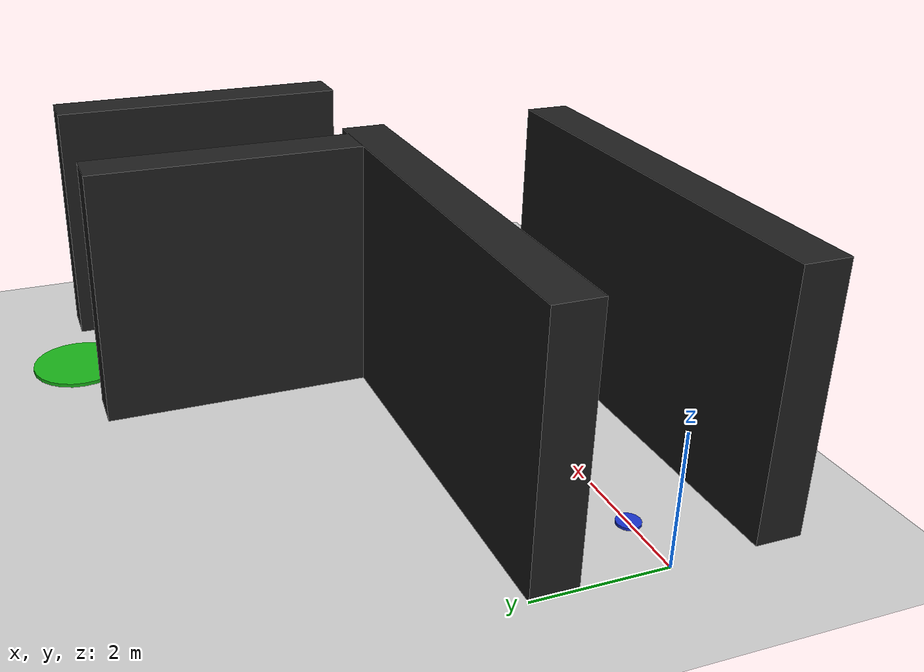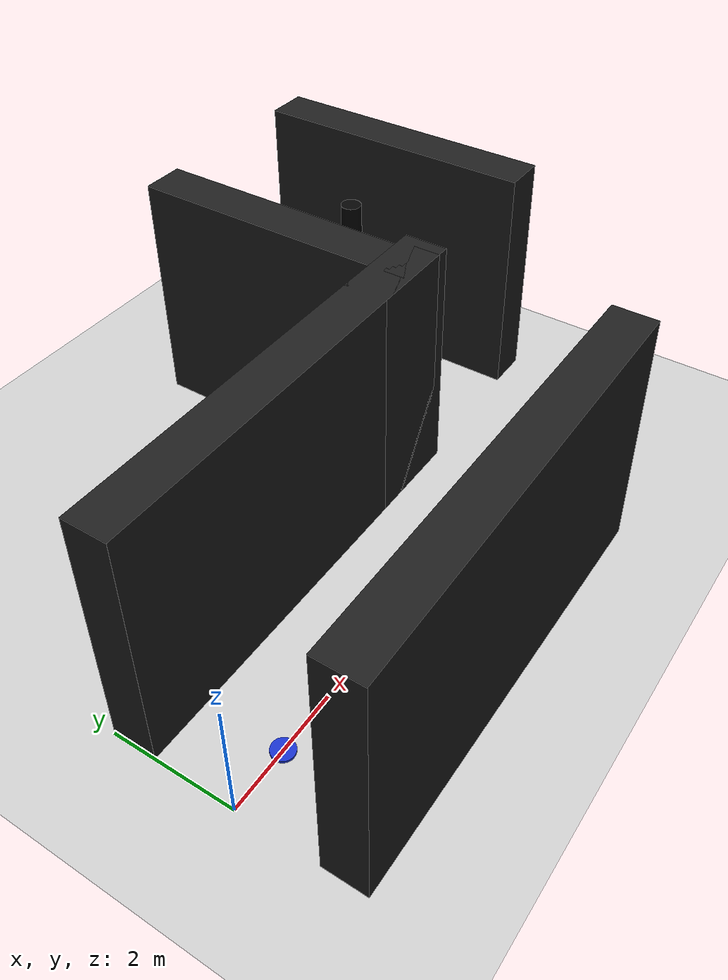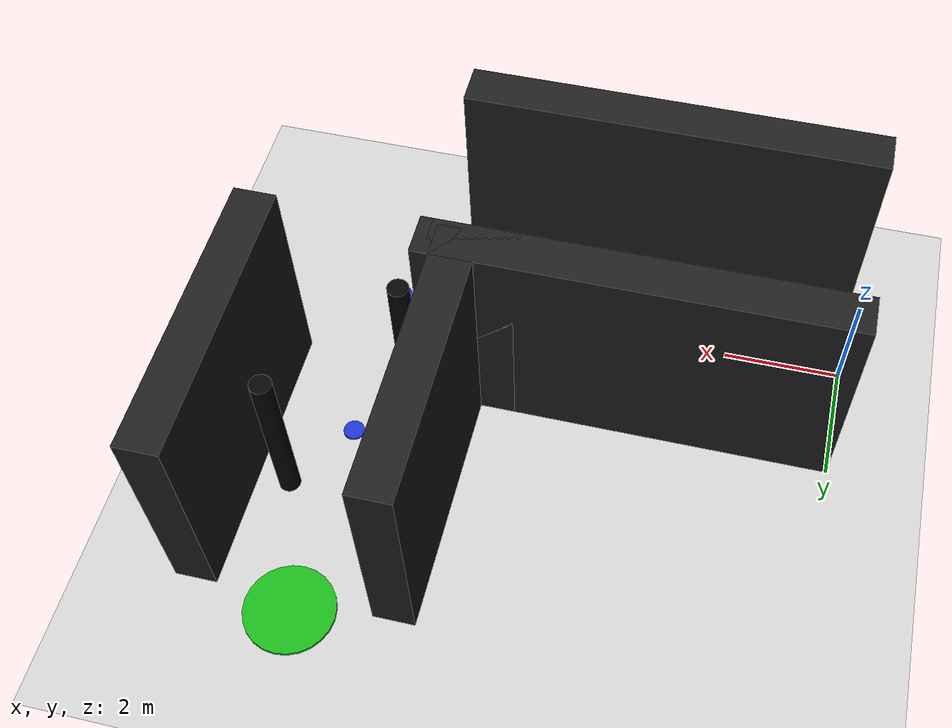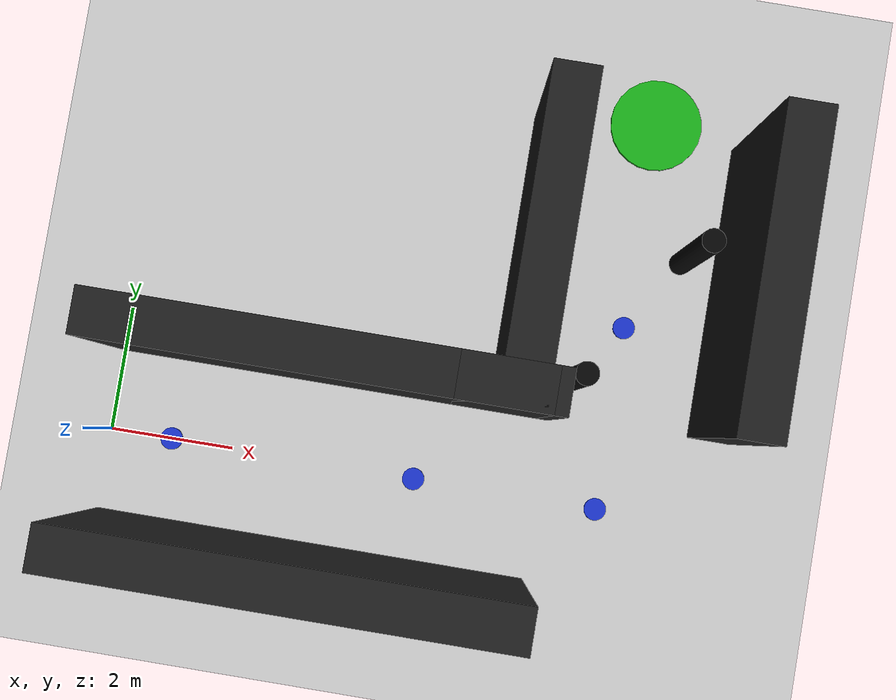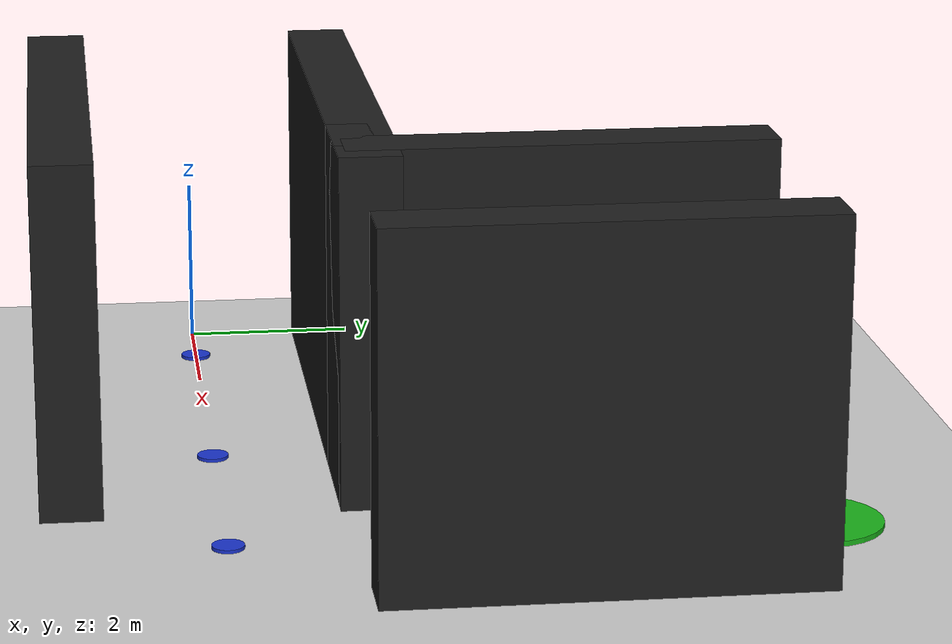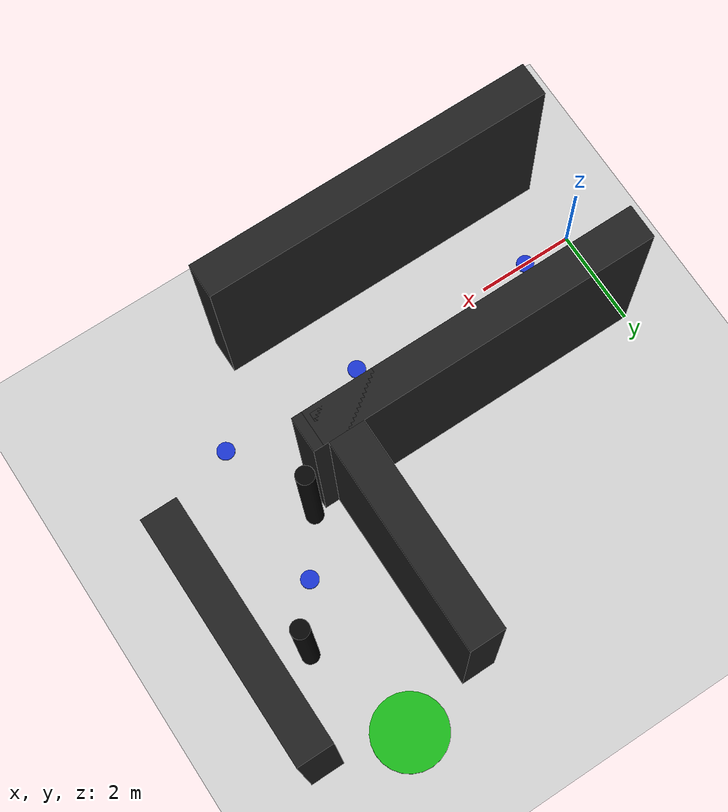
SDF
<?xml version='1.0' encoding='UTF-8'?>
<sdf version="1.6">
  <world name="d2_lshape_obstacle_delivery">

    <include>
      <uri>model://sun</uri>
    </include>

    <include>
      <uri>model://ground_plane</uri>
    </include>

    <physics name="default_physics" default="0" type="ode">
      <gravity>0 0 -9.8066</gravity>
      <ode>
        <solver>
          <type>quick</type>
          <iters>10</iters>
          <sor>1.3</sor>
        </solver>
        <constraints>
          <cfm>0</cfm>
          <erp>0.2</erp>
          <contact_max_correcting_vel>100</contact_max_correcting_vel>
          <contact_surface_layer>0.001</contact_surface_layer>
        </constraints>
      </ode>
      <real_time_update_rate>250</real_time_update_rate>
      <max_step_size>0.004</max_step_size>
    </physics>

    <model name="d2_wall_h_upper"><static>true</static><pose>3.5 1.65 2.0 0 0 0</pose><link name="link"><collision name="collision"><geometry><box><size>7.0 0.7 4.0</size></box></geometry></collision><visual name="visual"><geometry><box><size>7.0 0.7 4.0</size></box></geometry><material><ambient>0.12 0.12 0.12 1.0</ambient><diffuse>0.12 0.12 0.12 1.0</diffuse></material></visual></link></model><model name="d2_wall_h_lower"><static>true</static><pose>3.5 -1.65 2.0 0 0 0</pose><link name="link"><collision name="collision"><geometry><box><size>7.0 0.7 4.0</size></box></geometry></collision><visual name="visual"><geometry><box><size>7.0 0.7 4.0</size></box></geometry><material><ambient>0.12 0.12 0.12 1.0</ambient><diffuse>0.12 0.12 0.12 1.0</diffuse></material></visual></link></model><model name="d2_corner_block"><static>true</static><pose>6.1 1.65 2.0 0 0 0</pose><link name="link"><collision name="collision"><geometry><box><size>1.4 0.7 4.0</size></box></geometry></collision><visual name="visual"><geometry><box><size>1.4 0.7 4.0</size></box></geometry><material><ambient>0.12 0.12 0.12 1.0</ambient><diffuse>0.12 0.12 0.12 1.0</diffuse></material></visual></link></model><model name="d2_wall_v_left"><static>true</static><pose>6.35 3.8 2.0 0 0 0</pose><link name="link"><collision name="collision"><geometry><box><size>0.7 4.8 4.0</size></box></geometry></collision><visual name="visual"><geometry><box><size>0.7 4.8 4.0</size></box></geometry><material><ambient>0.12 0.12 0.12 1.0</ambient><diffuse>0.12 0.12 0.12 1.0</diffuse></material></visual></link></model><model name="d2_wall_v_right"><static>true</static><pose>9.65 3.8 2.0 0 0 0</pose><link name="link"><collision name="collision"><geometry><box><size>0.7 4.8 4.0</size></box></geometry></collision><visual name="visual"><geometry><box><size>0.7 4.8 4.0</size></box></geometry><material><ambient>0.12 0.12 0.12 1.0</ambient><diffuse>0.12 0.12 0.12 1.0</diffuse></material></visual></link></model><model name="d2_pole_1"><static>true</static><pose>7.25 2.0 1.5 0 0 0</pose><link name="link"><collision name="collision"><geometry><cylinder><radius>0.18</radius><length>3.0</length></cylinder></geometry></collision><visual name="visual"><geometry><cylinder><radius>0.18</radius><length>3.0</length></cylinder></geometry><material><ambient>0.02 0.02 0.02 1.0</ambient><diffuse>0.02 0.02 0.02 1.0</diffuse></material></visual></link></model><model name="d2_pole_2"><static>true</static><pose>8.75 4.2 1.5 0 0 0</pose><link name="link"><collision name="collision"><geometry><cylinder><radius>0.18</radius><length>3.0</length></cylinder></geometry></collision><visual name="visual"><geometry><cylinder><radius>0.18</radius><length>3.0</length></cylinder></geometry><material><ambient>0.02 0.02 0.02 1.0</ambient><diffuse>0.02 0.02 0.02 1.0</diffuse></material></visual></link></model><model name="d2_delivery_pad"><static>true</static><pose>8.0 6.4 0.03 0 0 0</pose><link name="link"><collision name="collision"><geometry><cylinder><radius>0.75</radius><length>0.06</length></cylinder></geometry></collision><visual name="visual"><geometry><cylinder><radius>0.75</radius><length>0.06</length></cylinder></geometry><material><ambient>0.1 0.7 0.1 1.0</ambient><diffuse>0.1 0.7 0.1 1.0</diffuse></material></visual></link></model><model name="d2_wp_start"><static>true</static><pose>1.0 0.0 0.02 0 0 0</pose><link name="link"><collision name="collision"><geometry><cylinder><radius>0.18</radius><length>0.04</length></cylinder></geometry></collision><visual name="visual"><geometry><cylinder><radius>0.18</radius><length>0.04</length></cylinder></geometry><material><ambient>0.1 0.2 0.8 1.0</ambient><diffuse>0.1 0.2 0.8 1.0</diffuse></material></visual></link></model><model name="d2_wp_turn_entry"><static>true</static><pose>5.0 0.0 0.02 0 0 0</pose><link name="link"><collision name="collision"><geometry><cylinder><radius>0.18</radius><length>0.04</length></cylinder></geometry></collision><visual name="visual"><geometry><cylinder><radius>0.18</radius><length>0.04</length></cylinder></geometry><material><ambient>0.1 0.2 0.8 1.0</ambient><diffuse>0.1 0.2 0.8 1.0</diffuse></material></visual></link></model><model name="d2_wp_corner"><static>true</static><pose>8.0 0.0 0.02 0 0 0</pose><link name="link"><collision name="collision"><geometry><cylinder><radius>0.18</radius><length>0.04</length></cylinder></geometry></collision><visual name="visual"><geometry><cylinder><radius>0.18</radius><length>0.04</length></cylinder></geometry><material><ambient>0.1 0.2 0.8 1.0</ambient><diffuse>0.1 0.2 0.8 1.0</diffuse></material></visual></link></model><model name="d2_wp_turn_exit"><static>true</static><pose>8.0 3.0 0.02 0 0 0</pose><link name="link"><collision name="collision"><geometry><cylinder><radius>0.18</radius><length>0.04</length></cylinder></geometry></collision><visual name="visual"><geometry><cylinder><radius>0.18</radius><length>0.04</length></cylinder></geometry><material><ambient>0.1 0.2 0.8 1.0</ambient><diffuse>0.1 0.2 0.8 1.0</diffuse></material></visual></link></model><model name="d2_wp_delivery"><static>true</static><pose>8.0 6.4 0.02 0 0 0</pose><link name="link"><collision name="collision"><geometry><cylinder><radius>0.18</radius><length>0.04</length></cylinder></geometry></collision><visual name="visual"><geometry><cylinder><radius>0.18</radius><length>0.04</length></cylinder></geometry><material><ambient>0.1 0.2 0.8 1.0</ambient><diffuse>0.1 0.2 0.8 1.0</diffuse></material></visual></link></model></world>
</sdf>
